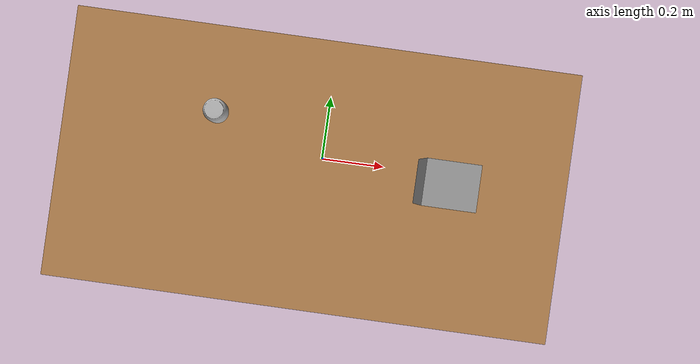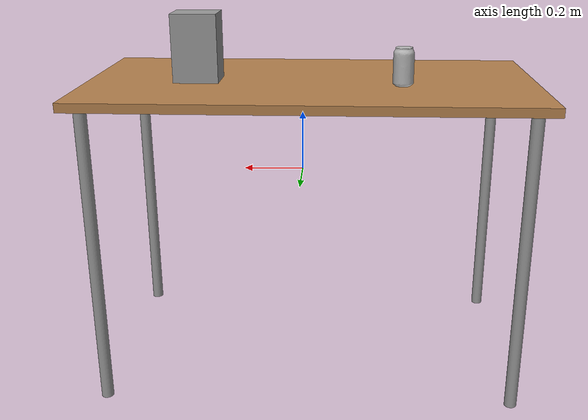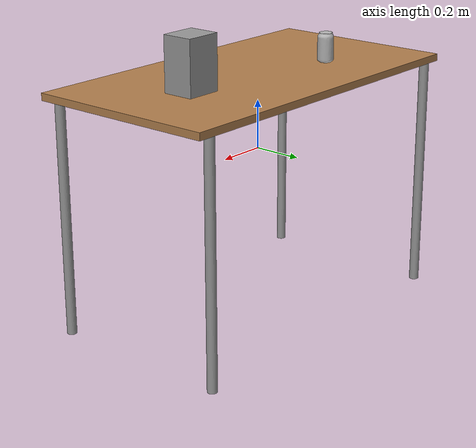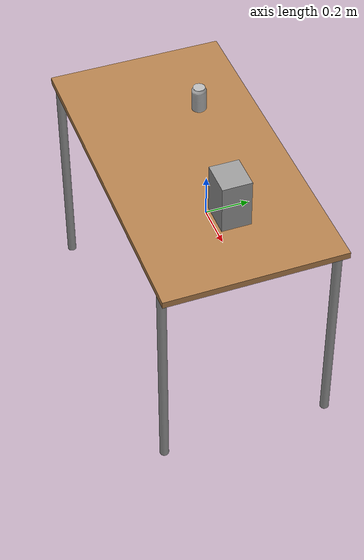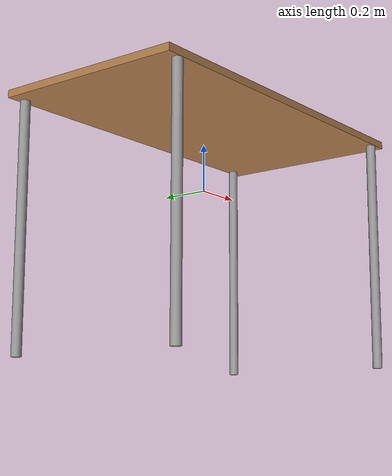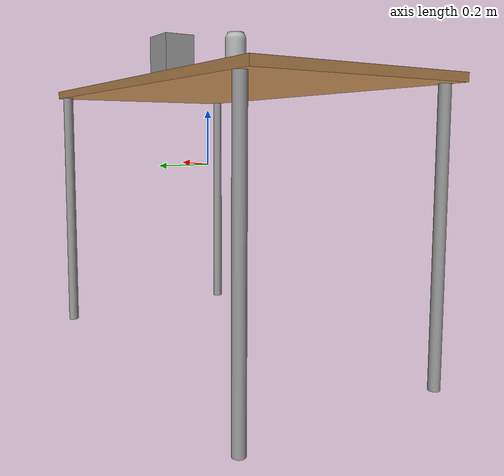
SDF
<?xml version='1.0'?>
<sdf version='1.7'>
  <model name='ardu'>
    <link name='link_0'>
      <inertial>
        <mass>0.00447017</mass>
        <inertia>
          <ixx>2.55657e-05</ixx>
          <ixy>0</ixy>
          <ixz>0</ixz>
          <iyy>2.76824e-05</iyy>
          <iyz>0</iyz>
          <izz>1.48153e-05</izz>
        </inertia>
        <pose>0 0 0 0 -0 0</pose>
      </inertial>
      <pose>0.353218 -0.032203 0.40997 0 -0 0</pose>
      <visual name='visual'>
        <pose>0 0 0 0 -0 0</pose>
        <geometry>
          <box>
            <size>0.150754 0.130554 0.227125</size>
          </box>
        </geometry>
        <material>
          <lighting>1</lighting>
          <script>
            <uri>file://media/materials/scripts/gazebo.material</uri>
            <name>Gazebo/Grey</name>
          </script>
          <shader type='pixel'/>
        </material>
        <transparency>0</transparency>
        <cast_shadows>1</cast_shadows>
      </visual>
      <collision name='collision'>
        <laser_retro>0</laser_retro>
        <max_contacts>10</max_contacts>
        <pose>0 0 0 0 -0 0</pose>
        <geometry>
          <box>
            <size>0.150754 0.130554 0.227125</size>
          </box>
        </geometry>
        <surface>
          <friction>
            <ode>
              <mu>1</mu>
              <mu2>1</mu2>
              <fdir1>0 0 0</fdir1>
              <slip1>0</slip1>
              <slip2>0</slip2>
            </ode>
            <torsional>
              <coefficient>1</coefficient>
              <patch_radius>0</patch_radius>
              <surface_radius>0</surface_radius>
              <use_patch_radius>1</use_patch_radius>
              <ode>
                <slip>0</slip>
              </ode>
            </torsional>
          </friction>
          <bounce>
            <restitution_coefficient>0</restitution_coefficient>
            <threshold>1e+06</threshold>
          </bounce>
          <contact>
            <collide_without_contact>0</collide_without_contact>
            <collide_without_contact_bitmask>1</collide_without_contact_bitmask>
            <collide_bitmask>1</collide_bitmask>
            <ode>
              <soft_cfm>0</soft_cfm>
              <soft_erp>0.2</soft_erp>
              <kp>1e+13</kp>
              <kd>1</kd>
              <max_vel>0.01</max_vel>
              <min_depth>0</min_depth>
            </ode>
            <bullet>
              <split_impulse>1</split_impulse>
              <split_impulse_penetration_threshold>-0.01</split_impulse_penetration_threshold>
              <soft_cfm>0</soft_cfm>
              <soft_erp>0.2</soft_erp>
              <kp>1e+13</kp>
              <kd>1</kd>
            </bullet>
          </contact>
        </surface>
      </collision>
    </link>
    <model name='coke_can'>
      <link name='link'>
        <inertial>
          <pose>0 0 0.06 0 -0 0</pose>
          <mass>0.39</mass>
          <inertia>
            <ixx>0.00055575</ixx>
            <ixy>0</ixy>
            <ixz>0</ixz>
            <iyy>0.00055575</iyy>
            <iyz>0</iyz>
            <izz>0.0001755</izz>
          </inertia>
        </inertial>
        <collision name='collision'>
          <pose>0.003937 0.004724 -0.18 0 -0 0</pose>
          <geometry>
            <mesh>
              <uri>model://coke_can/meshes/coke_can.dae</uri>
            </mesh>
          </geometry>
          <surface>
            <friction>
              <ode>
                <mu>1</mu>
                <mu2>1</mu2>
              </ode>
            </friction>
            <contact>
              <ode>
                <kp>1e+07</kp>
                <kd>1</kd>
                <min_depth>0.001</min_depth>
                <max_vel>0.1</max_vel>
              </ode>
            </contact>
          </surface>
        </collision>
        <visual name='visual'>
          <pose>0.003937 0.004724 -0.18 0 -0 0</pose>
          <geometry>
            <mesh>
              <uri>model://coke_can/meshes/coke_can.dae</uri>
            </mesh>
          </geometry>
        </visual>
      </link>
      <pose>-0.325175 0.088698 0.305669 0 -0 0</pose>
    </model>
    <model name='table'>
      <static>1</static>
      <link name='link'>
        <collision name='surface'>
          <pose>0 0 1 0 -0 0</pose>
          <geometry>
            <box>
              <size>1.5 0.8 0.03</size>
            </box>
          </geometry>
          <surface>
            <friction>
              <ode>
                <mu>0.6</mu>
                <mu2>0.6</mu2>
              </ode>
            </friction>
          </surface>
        </collision>
        <visual name='visual1'>
          <pose>0 0 1 0 -0 0</pose>
          <geometry>
            <box>
              <size>1.5 0.8 0.03</size>
            </box>
          </geometry>
          <material>
            <script>
              <uri>file://media/materials/scripts/gazebo.material</uri>
              <name>Gazebo/Wood</name>
            </script>
          </material>
        </visual>
        <collision name='front_left_leg'>
          <pose>0.68 0.38 0.5 0 -0 0</pose>
          <geometry>
            <cylinder>
              <radius>0.02</radius>
              <length>1</length>
            </cylinder>
          </geometry>
        </collision>
        <visual name='front_left_leg'>
          <pose>0.68 0.38 0.5 0 -0 0</pose>
          <geometry>
            <cylinder>
              <radius>0.02</radius>
              <length>1</length>
            </cylinder>
          </geometry>
          <material>
            <script>
              <uri>file://media/materials/scripts/gazebo.material</uri>
              <name>Gazebo/Grey</name>
            </script>
          </material>
        </visual>
        <collision name='front_right_leg'>
          <pose>0.68 -0.38 0.5 0 -0 0</pose>
          <geometry>
            <cylinder>
              <radius>0.02</radius>
              <length>1</length>
            </cylinder>
          </geometry>
        </collision>
        <visual name='front_right_leg'>
          <pose>0.68 -0.38 0.5 0 -0 0</pose>
          <geometry>
            <cylinder>
              <radius>0.02</radius>
              <length>1</length>
            </cylinder>
          </geometry>
          <material>
            <script>
              <uri>file://media/materials/scripts/gazebo.material</uri>
              <name>Gazebo/Grey</name>
            </script>
          </material>
        </visual>
        <collision name='back_right_leg'>
          <pose>-0.68 -0.38 0.5 0 -0 0</pose>
          <geometry>
            <cylinder>
              <radius>0.02</radius>
              <length>1</length>
            </cylinder>
          </geometry>
        </collision>
        <visual name='back_right_leg'>
          <pose>-0.68 -0.38 0.5 0 -0 0</pose>
          <geometry>
            <cylinder>
              <radius>0.02</radius>
              <length>1</length>
            </cylinder>
          </geometry>
          <material>
            <script>
              <uri>file://media/materials/scripts/gazebo.material</uri>
              <name>Gazebo/Grey</name>
            </script>
          </material>
        </visual>
        <collision name='back_left_leg'>
          <pose>-0.68 0.38 0.5 0 -0 0</pose>
          <geometry>
            <cylinder>
              <radius>0.02</radius>
              <length>1</length>
            </cylinder>
          </geometry>
        </collision>
        <visual name='back_left_leg'>
          <pose>-0.68 0.38 0.5 0 -0 0</pose>
          <geometry>
            <cylinder>
              <radius>0.02</radius>
              <length>1</length>
            </cylinder>
          </geometry>
          <material>
            <script>
              <uri>file://media/materials/scripts/gazebo.material</uri>
              <name>Gazebo/Grey</name>
            </script>
          </material>
        </visual>
      </link>
      <pose>-0.028044 -0.056503 -0.715639 0 -0 0</pose>
    </model>
    <static>0</static>
    <allow_auto_disable>1</allow_auto_disable>
  </model>
</sdf>
